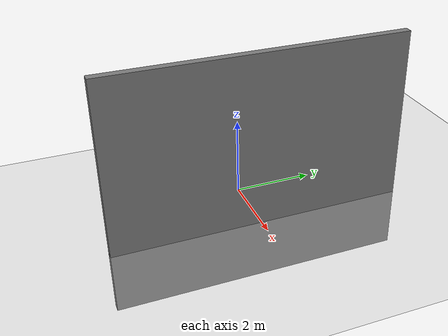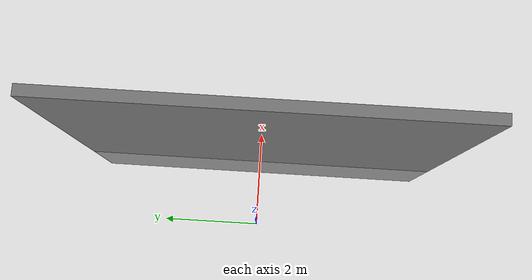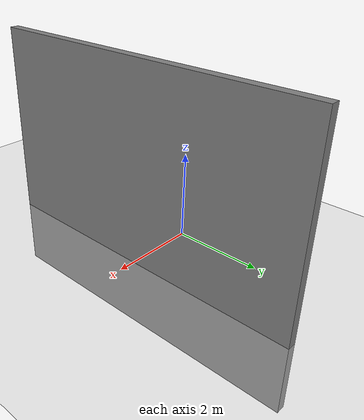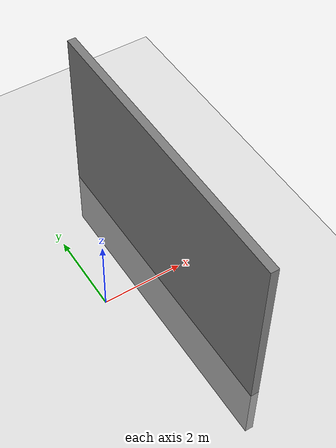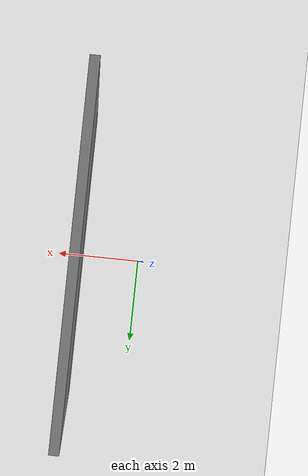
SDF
<?xml version="1.0"?>
<sdf version="1.9">
  <world name="default">

    <!-- Enable physics -->
    <gravity>0 0 -9.8</gravity>

    <!-- Add a ground plane -->
    <include>
      <uri>https://fuel.gazebosim.org/1.0/OpenRobotics/models/Ground Plane</uri>
    </include>

    <!-- Light -->
    <include>
      <uri>https://fuel.gazebosim.org/1.0/OpenRobotics/models/Sun</uri>
    </include>

    <include>
      <uri>
            https://fuel.gazebosim.org/1.0/OpenRobotics/models/Grey Wall
      </uri>
      <pose>1.5 0 0 0 0 1.570</pose>
    </include>

  </world>
</sdf>

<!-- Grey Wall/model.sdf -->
<sdf version="1.6">
  <model name="grey_wall">
    <static>true</static>
    <link name="link">
      <pose>0 0 1.4 0 0 0</pose>
      <collision name="collision">
        <geometry>
          <box>
            <size>7.5 0.2 6</size>
          </box>
        </geometry>
      </collision>
      <visual name="visual">
        <cast_shadows>true</cast_shadows>
        <geometry>
          <box>
            <size>7.5 0.2 6</size>
          </box>
        </geometry>
        <material>
            <pbr>
              <metal>
                <albedo_map>materials/textures/grey_wall.png</albedo_map>
              </metal>
            </pbr>
            <ambient>0.5 0.5 0.5 1.0</ambient>
            <diffuse>0.5 0.5 0.5 1.0</diffuse>
            <specular>0.2 0.2 0.2 1.0</specular>
        </material>
      </visual>
    </link>
  </model>
</sdf>
